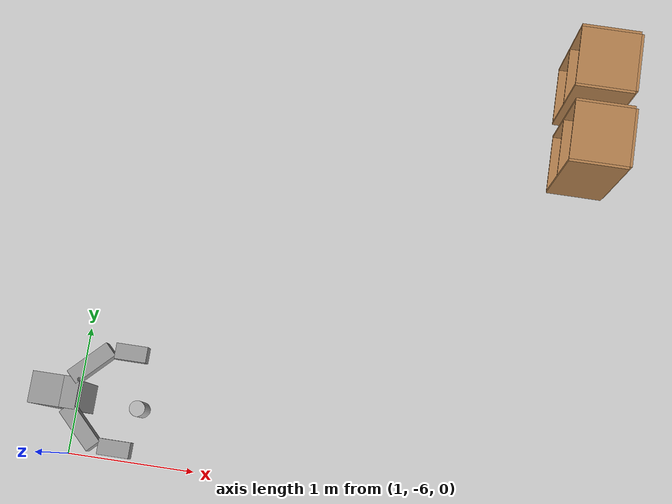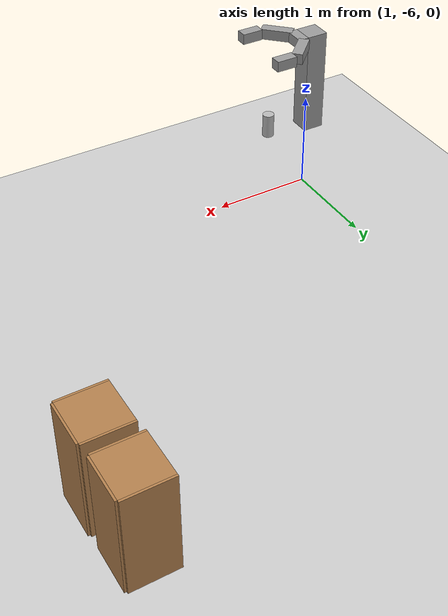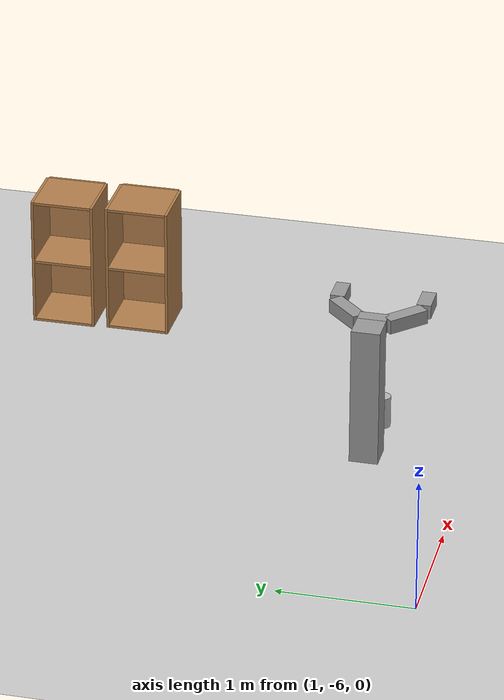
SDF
<sdf version="1.6">
 <world name="default">
  <model name="ground_plane">
   <static>1</static>
   <link name="link">
    <collision name="collision">
     <geometry><plane><normal>0 0 1</normal><size>100 100</size></plane></geometry>
     <surface>
      <contact><collide_bitmask>65535</collide_bitmask></contact>
      <friction><ode><mu>100</mu><mu2>50</mu2></ode></friction>
     </surface>
    </collision>
    <visual name="visual">
     <cast_shadows>0</cast_shadows>
     <geometry><plane><normal>0 0 1</normal><size>100 100</size></plane></geometry>
     <material>
      <script><uri>file://media/materials/scripts/gazebo.material</uri><name>Gazebo/Grey</name></script>
     </material>
    </visual>
   </link>
  </model>
  <model name="cabinet">
   <static>1</static>
   <link name="cabinet_bottom_plate">
    <inertial>
     <pose>0 0 -1 0 -0 0</pose>
     <inertia><ixx>2.05</ixx><ixy>0</ixy><ixz>0</ixz><iyy>2.05</iyy><iyz>0</iyz><izz>2.05</izz></inertia>
     <mass>25</mass>
    </inertial>
    <collision name="cabinet_bottom_plate_geom">
     <pose>0 0 0.01 0 -0 0</pose>
     <geometry><box><size>0.45 0.45 0.02</size></box></geometry>
    </collision>
    <visual name="cabinet_bottom_plate_geom_visual">
     <pose>0 0 0.01 0 -0 0</pose>
     <geometry><box><size>0.45 0.45 0.02</size></box></geometry>
     <material>
      <script><uri>file://media/materials/scripts/gazebo.material</uri><name>Gazebo/Wood</name></script>
     </material>
    </visual>
    <collision name="cabinet_bottom_plate_geom_cabinet_back_plate">
     <pose>0.235 0 0.51 0 -0 0</pose>
     <geometry><box><size>0.02 0.45 1.02</size></box></geometry>
    </collision>
    <visual name="cabinet_bottom_plate_geom_cabinet_back_plate_visual">
     <pose>0.235 0 0.51 0 -0 0</pose>
     <geometry><box><size>0.02 0.45 1.02</size></box></geometry>
     <material>
      <script><uri>file://media/materials/scripts/gazebo.material</uri><name>Gazebo/Wood</name></script>
     </material>
    </visual>
    <collision name="cabinet_bottom_plate_geom_cabinet_left_plate">
     <pose>0 0.235 0.51 0 -0 0</pose>
     <geometry><box><size>0.45 0.02 1.02</size></box></geometry>
    </collision>
    <visual name="cabinet_bottom_plate_geom_cabinet_left_plate_visual">
     <pose>0 0.235 0.51 0 -0 0</pose>
     <geometry><box><size>0.45 0.02 1.02</size></box></geometry>
     <material>
      <script><uri>file://media/materials/scripts/gazebo.material</uri><name>Gazebo/Wood</name></script>
     </material>
    </visual>
    <collision name="cabinet_bottom_plate_geom_cabinet_middle_plate">
     <pose>0 0 0.51 0 -0 0</pose>
     <geometry><box><size>0.45 0.45 0.02</size></box></geometry>
    </collision>
    <visual name="cabinet_bottom_plate_geom_cabinet_middle_plate_visual">
     <pose>0 0 0.51 0 -0 0</pose>
     <geometry><box><size>0.45 0.45 0.02</size></box></geometry>
     <material>
      <script><uri>file://media/materials/scripts/gazebo.material</uri><name>Gazebo/Wood</name></script>
     </material>
    </visual>
    <collision name="cabinet_bottom_plate_geom_cabinet_right_plate">
     <pose>0 -0.235 0.51 0 -0 0</pose>
     <geometry><box><size>0.45 0.02 1.02</size></box></geometry>
    </collision>
    <visual name="cabinet_bottom_plate_geom_cabinet_right_plate_visual">
     <pose>0 -0.235 0.51 0 -0 0</pose>
     <geometry><box><size>0.45 0.02 1.02</size></box></geometry>
     <material>
      <script><uri>file://media/materials/scripts/gazebo.material</uri><name>Gazebo/Wood</name></script>
     </material>
    </visual>
    <collision name="cabinet_bottom_plate_geom_cabinet_top_plate">
     <pose>0 0 1.01 0 -0 0</pose>
     <geometry><box><size>0.45 0.45 0.02</size></box></geometry>
    </collision>
    <visual name="cabinet_bottom_plate_geom_cabinet_top_plate_visual">
     <pose>0 0 1.01 0 -0 0</pose>
     <geometry><box><size>0.45 0.45 0.02</size></box></geometry>
     <material>
      <script><uri>file://media/materials/scripts/gazebo.material</uri><name>Gazebo/Wood</name></script>
     </material>
    </visual>
   </link>
   <pose>4.68279 -2.5185 0 0 -0 0</pose>
  </model>
  <model name="cabinet_0">
   <static>1</static>
   <link name="cabinet_bottom_plate">
    <inertial>
     <pose>0 0 -1 0 -0 0</pose>
     <inertia><ixx>2.05</ixx><ixy>0</ixy><ixz>0</ixz><iyy>2.05</iyy><iyz>0</iyz><izz>2.05</izz></inertia>
     <mass>25</mass>
    </inertial>
    <collision name="cabinet_bottom_plate_geom">
     <pose>0 0 0.01 0 -0 0</pose>
     <geometry><box><size>0.45 0.45 0.02</size></box></geometry>
    </collision>
    <visual name="cabinet_bottom_plate_geom_visual">
     <pose>0 0 0.01 0 -0 0</pose>
     <geometry><box><size>0.45 0.45 0.02</size></box></geometry>
     <material>
      <script><uri>file://media/materials/scripts/gazebo.material</uri><name>Gazebo/Wood</name></script>
     </material>
    </visual>
    <collision name="cabinet_bottom_plate_geom_cabinet_back_plate">
     <pose>0.235 0 0.51 0 -0 0</pose>
     <geometry><box><size>0.02 0.45 1.02</size></box></geometry>
    </collision>
    <visual name="cabinet_bottom_plate_geom_cabinet_back_plate_visual">
     <pose>0.235 0 0.51 0 -0 0</pose>
     <geometry><box><size>0.02 0.45 1.02</size></box></geometry>
     <material>
      <script><uri>file://media/materials/scripts/gazebo.material</uri><name>Gazebo/Wood</name></script>
     </material>
    </visual>
    <collision name="cabinet_bottom_plate_geom_cabinet_left_plate">
     <pose>0 0.235 0.51 0 -0 0</pose>
     <geometry><box><size>0.45 0.02 1.02</size></box></geometry>
    </collision>
    <visual name="cabinet_bottom_plate_geom_cabinet_left_plate_visual">
     <pose>0 0.235 0.51 0 -0 0</pose>
     <geometry><box><size>0.45 0.02 1.02</size></box></geometry>
     <material>
      <script><uri>file://media/materials/scripts/gazebo.material</uri><name>Gazebo/Wood</name></script>
     </material>
    </visual>
    <collision name="cabinet_bottom_plate_geom_cabinet_middle_plate">
     <pose>0 0 0.51 0 -0 0</pose>
     <geometry><box><size>0.45 0.45 0.02</size></box></geometry>
    </collision>
    <visual name="cabinet_bottom_plate_geom_cabinet_middle_plate_visual">
     <pose>0 0 0.51 0 -0 0</pose>
     <geometry><box><size>0.45 0.45 0.02</size></box></geometry>
     <material>
      <script><uri>file://media/materials/scripts/gazebo.material</uri><name>Gazebo/Wood</name></script>
     </material>
    </visual>
    <collision name="cabinet_bottom_plate_geom_cabinet_right_plate">
     <pose>0 -0.235 0.51 0 -0 0</pose>
     <geometry><box><size>0.45 0.02 1.02</size></box></geometry>
    </collision>
    <visual name="cabinet_bottom_plate_geom_cabinet_right_plate_visual">
     <pose>0 -0.235 0.51 0 -0 0</pose>
     <geometry><box><size>0.45 0.02 1.02</size></box></geometry>
     <material>
      <script><uri>file://media/materials/scripts/gazebo.material</uri><name>Gazebo/Wood</name></script>
     </material>
    </visual>
    <collision name="cabinet_bottom_plate_geom_cabinet_top_plate">
     <pose>0 0 1.01 0 -0 0</pose>
     <geometry><box><size>0.45 0.45 0.02</size></box></geometry>
    </collision>
    <visual name="cabinet_bottom_plate_geom_cabinet_top_plate_visual">
     <pose>0 0 1.01 0 -0 0</pose>
     <geometry><box><size>0.45 0.45 0.02</size></box></geometry>
     <material>
      <script><uri>file://media/materials/scripts/gazebo.material</uri><name>Gazebo/Wood</name></script>
     </material>
    </visual>
   </link>
   <pose>4.70024 -3.10262 0 0 -0 0</pose>
  </model>
  <model name="RobotGripper_clone">
   <link name="link_0">
    <pose>-0.270333 0 -0.375 0 -0 0</pose>
    <inertial>
     <mass>1</mass>
     <inertia>
      <ixx>0.166667</ixx>
      <ixy>0</ixy>
      <ixz>0</ixz>
      <iyy>0.166667</iyy>
      <iyz>0</iyz>
      <izz>0.166667</izz>
     </inertia>
     <pose>0 0 -0.5 0 -0 0</pose>
    </inertial>
    <visual name="visual">
     <geometry><box><size>0.2 0.2 1</size></box></geometry>
     <material>
      <lighting>1</lighting>
      <script><uri>file://media/materials/scripts/gazebo.material</uri><name>Gazebo/Grey</name></script>
      <shader type="pixel"><normal_map>__default__</normal_map></shader>
      <ambient>0.3 0.3 0.3 1</ambient>
      <diffuse>0.7 0.7 0.7 1</diffuse>
      <specular>0.01 0.01 0.01 1</specular>
      <emissive>0 0 0 1</emissive>
     </material>
    </visual>
    <collision name="collision">
     <geometry><box><size>0.2 0.2 1</size></box></geometry>
     <surface>
      <friction>
       <ode><mu>1</mu><mu2>1</mu2><fdir1>0 0 0</fdir1><slip1>0</slip1><slip2>0</slip2></ode>
       <torsional>
        <coefficient>1</coefficient>
        <patch_radius>0</patch_radius>
        <surface_radius>0</surface_radius>
        <use_patch_radius>1</use_patch_radius>
        <ode><slip>0</slip></ode>
       </torsional>
      </friction>
      <bounce><restitution_coefficient>0</restitution_coefficient><threshold>1e+06</threshold></bounce>
      <contact>
       <collide_without_contact>0</collide_without_contact>
       <collide_without_contact_bitmask>1</collide_without_contact_bitmask>
       <collide_bitmask>1</collide_bitmask>
       <ode>
        <soft_cfm>0</soft_cfm>
        <soft_erp>0.2</soft_erp>
        <kp>1e+13</kp>
        <kd>1</kd>
        <max_vel>0.01</max_vel>
        <min_depth>0</min_depth>
       </ode>
       <bullet>
        <split_impulse>1</split_impulse>
        <split_impulse_penetration_threshold>-0.01</split_impulse_penetration_threshold>
        <soft_cfm>0</soft_cfm>
        <soft_erp>0.2</soft_erp>
        <kp>1e+13</kp>
        <kd>1</kd>
       </bullet>
      </contact>
     </surface>
    </collision>
   </link>
   <link name="link_1">
    <pose>-0.120333 0 0.075 0 -0 0</pose>
    <inertial>
     <mass>1</mass>
     <inertia>
      <ixx>0.166667</ixx>
      <ixy>0</ixy>
      <ixz>0</ixz>
      <iyy>0.166667</iyy>
      <iyz>0</iyz>
      <izz>0.166667</izz>
     </inertia>
    </inertial>
    <visual name="visual">
     <geometry><box><size>0.1 0.2 0.1</size></box></geometry>
     <material>
      <lighting>1</lighting>
      <script><uri>file://media/materials/scripts/gazebo.material</uri><name>Gazebo/Grey</name></script>
      <shader type="pixel"><normal_map>__default__</normal_map></shader>
      <ambient>0.3 0.3 0.3 1</ambient>
      <diffuse>0.7 0.7 0.7 1</diffuse>
      <specular>0.01 0.01 0.01 1</specular>
      <emissive>0 0 0 1</emissive>
     </material>
    </visual>
    <collision name="collision">
     <geometry><box><size>0.1 0.2 0.1</size></box></geometry>
     <surface>
      <friction>
       <ode><mu>1</mu><mu2>1</mu2><fdir1>0 0 0</fdir1><slip1>0</slip1><slip2>0</slip2></ode>
       <torsional>
        <coefficient>1</coefficient>
        <patch_radius>0</patch_radius>
        <surface_radius>0</surface_radius>
        <use_patch_radius>1</use_patch_radius>
        <ode><slip>0</slip></ode>
       </torsional>
      </friction>
      <bounce><restitution_coefficient>0</restitution_coefficient><threshold>1e+06</threshold></bounce>
      <contact>
       <collide_without_contact>0</collide_without_contact>
       <collide_without_contact_bitmask>1</collide_without_contact_bitmask>
       <collide_bitmask>1</collide_bitmask>
       <ode>
        <soft_cfm>0</soft_cfm>
        <soft_erp>0.2</soft_erp>
        <kp>1e+13</kp>
        <kd>1</kd>
        <max_vel>0.01</max_vel>
        <min_depth>0</min_depth>
       </ode>
       <bullet>
        <split_impulse>1</split_impulse>
        <split_impulse_penetration_threshold>-0.01</split_impulse_penetration_threshold>
        <soft_cfm>0</soft_cfm>
        <soft_erp>0.2</soft_erp>
        <kp>1e+13</kp>
        <kd>1</kd>
       </bullet>
      </contact>
     </surface>
    </collision>
   </link>
   <link name="link_2">
    <pose>-0.020333 0.2 0.075 0 0 -0.78539</pose>
    <inertial>
     <mass>1</mass>
     <inertia>
      <ixx>0.166667</ixx>
      <ixy>0</ixy>
      <ixz>0</ixz>
      <iyy>0.166667</iyy>
      <iyz>0</iyz>
      <izz>0.166667</izz>
     </inertia>
    </inertial>
    <visual name="visual">
     <geometry><box><size>0.1 0.3 0.1</size></box></geometry>
     <material>
      <lighting>1</lighting>
      <script><uri>file://media/materials/scripts/gazebo.material</uri><name>Gazebo/Grey</name></script>
      <shader type="pixel"><normal_map>__default__</normal_map></shader>
      <ambient>0.3 0.3 0.3 1</ambient>
      <diffuse>0.7 0.7 0.7 1</diffuse>
      <specular>0.01 0.01 0.01 1</specular>
      <emissive>0 0 0 1</emissive>
     </material>
    </visual>
    <collision name="collision">
     <geometry><box><size>0.1 0.3 0.1</size></box></geometry>
     <surface>
      <friction>
       <ode><mu>1</mu><mu2>1</mu2><fdir1>0 0 0</fdir1><slip1>0</slip1><slip2>0</slip2></ode>
       <torsional>
        <coefficient>1</coefficient>
        <patch_radius>0</patch_radius>
        <surface_radius>0</surface_radius>
        <use_patch_radius>1</use_patch_radius>
        <ode><slip>0</slip></ode>
       </torsional>
      </friction>
      <bounce><restitution_coefficient>0</restitution_coefficient><threshold>1e+06</threshold></bounce>
      <contact>
       <collide_without_contact>0</collide_without_contact>
       <collide_without_contact_bitmask>1</collide_without_contact_bitmask>
       <collide_bitmask>1</collide_bitmask>
       <ode>
        <soft_cfm>0</soft_cfm>
        <soft_erp>0.2</soft_erp>
        <kp>1e+13</kp>
        <kd>1</kd>
        <max_vel>0.01</max_vel>
        <min_depth>0</min_depth>
       </ode>
       <bullet>
        <split_impulse>1</split_impulse>
        <split_impulse_penetration_threshold>-0.01</split_impulse_penetration_threshold>
        <soft_cfm>0</soft_cfm>
        <soft_erp>0.2</soft_erp>
        <kp>1e+13</kp>
        <kd>1</kd>
       </bullet>
      </contact>
     </surface>
    </collision>
   </link>
   <link name="link_2_clone">
    <pose>-0.020333 -0.2 0.075 0 -0 0.78539</pose>
    <inertial>
     <mass>1</mass>
     <inertia>
      <ixx>0.166667</ixx>
      <ixy>0</ixy>
      <ixz>0</ixz>
      <iyy>0.166667</iyy>
      <iyz>0</iyz>
      <izz>0.166667</izz>
     </inertia>
    </inertial>
    <visual name="visual">
     <geometry><box><size>0.1 0.3 0.1</size></box></geometry>
     <material>
      <lighting>1</lighting>
      <script><uri>file://media/materials/scripts/gazebo.material</uri><name>Gazebo/Grey</name></script>
      <shader type="pixel"><normal_map>__default__</normal_map></shader>
      <ambient>0.3 0.3 0.3 1</ambient>
      <diffuse>0.7 0.7 0.7 1</diffuse>
      <specular>0.01 0.01 0.01 1</specular>
      <emissive>0 0 0 1</emissive>
     </material>
    </visual>
    <collision name="collision">
     <geometry><box><size>0.1 0.3 0.1</size></box></geometry>
     <surface>
      <friction>
       <ode><mu>1</mu><mu2>1</mu2><fdir1>0 0 0</fdir1><slip1>0</slip1><slip2>0</slip2></ode>
       <torsional>
        <coefficient>1</coefficient>
        <patch_radius>0</patch_radius>
        <surface_radius>0</surface_radius>
        <use_patch_radius>1</use_patch_radius>
        <ode><slip>0</slip></ode>
       </torsional>
      </friction>
      <bounce><restitution_coefficient>0</restitution_coefficient><threshold>1e+06</threshold></bounce>
      <contact>
       <collide_without_contact>0</collide_without_contact>
       <collide_without_contact_bitmask>1</collide_without_contact_bitmask>
       <collide_bitmask>1</collide_bitmask>
       <ode>
        <soft_cfm>0</soft_cfm>
        <soft_erp>0.2</soft_erp>
        <kp>1e+13</kp>
        <kd>1</kd>
        <max_vel>0.01</max_vel>
        <min_depth>0</min_depth>
       </ode>
       <bullet>
        <split_impulse>1</split_impulse>
        <split_impulse_penetration_threshold>-0.01</split_impulse_penetration_threshold>
        <soft_cfm>0</soft_cfm>
        <soft_erp>0.2</soft_erp>
        <kp>1e+13</kp>
        <kd>1</kd>
       </bullet>
      </contact>
     </surface>
    </collision>
   </link>
   <link name="link_3">
    <pose>0.215667 0.3 0.075 0 -0 1.5707</pose>
    <inertial>
     <mass>1</mass>
     <inertia>
      <ixx>0.166667</ixx>
      <ixy>0</ixy>
      <ixz>0</ixz>
      <iyy>0.166667</iyy>
      <iyz>0</iyz>
      <izz>0.166667</izz>
     </inertia>
    </inertial>
    <visual name="visual">
     <geometry><box><size>0.1 0.2 0.1</size></box></geometry>
     <material>
      <lighting>1</lighting>
      <script><uri>file://media/materials/scripts/gazebo.material</uri><name>Gazebo/Grey</name></script>
      <shader type="pixel"><normal_map>__default__</normal_map></shader>
      <ambient>0.3 0.3 0.3 1</ambient>
      <diffuse>0.7 0.7 0.7 1</diffuse>
      <specular>0.01 0.01 0.01 1</specular>
      <emissive>0 0 0 1</emissive>
     </material>
    </visual>
    <collision name="collision">
     <geometry><box><size>0.1 0.2 0.1</size></box></geometry>
     <surface>
      <friction>
       <ode><mu>1</mu><mu2>1</mu2><fdir1>0 0 0</fdir1><slip1>0</slip1><slip2>0</slip2></ode>
       <torsional>
        <coefficient>1</coefficient>
        <patch_radius>0</patch_radius>
        <surface_radius>0</surface_radius>
        <use_patch_radius>1</use_patch_radius>
        <ode><slip>0</slip></ode>
       </torsional>
      </friction>
      <bounce><restitution_coefficient>0</restitution_coefficient><threshold>1e+06</threshold></bounce>
      <contact>
       <collide_without_contact>0</collide_without_contact>
       <collide_without_contact_bitmask>1</collide_without_contact_bitmask>
       <collide_bitmask>1</collide_bitmask>
       <ode>
        <soft_cfm>0</soft_cfm>
        <soft_erp>0.2</soft_erp>
        <kp>1e+13</kp>
        <kd>1</kd>
        <max_vel>0.01</max_vel>
        <min_depth>0</min_depth>
       </ode>
       <bullet>
        <split_impulse>1</split_impulse>
        <split_impulse_penetration_threshold>-0.01</split_impulse_penetration_threshold>
        <soft_cfm>0</soft_cfm>
        <soft_erp>0.2</soft_erp>
        <kp>1e+13</kp>
        <kd>1</kd>
       </bullet>
      </contact>
     </surface>
    </collision>
   </link>
   <link name="link_3_clone">
    <pose>0.215667 -0.3 0.075 0 -0 1.5707</pose>
    <inertial>
     <mass>1</mass>
     <inertia>
      <ixx>0.166667</ixx>
      <ixy>0</ixy>
      <ixz>0</ixz>
      <iyy>0.166667</iyy>
      <iyz>0</iyz>
      <izz>0.166667</izz>
     </inertia>
    </inertial>
    <visual name="visual">
     <geometry><box><size>0.1 0.2 0.1</size></box></geometry>
     <material>
      <lighting>1</lighting>
      <script><uri>file://media/materials/scripts/gazebo.material</uri><name>Gazebo/Grey</name></script>
      <shader type="pixel"><normal_map>__default__</normal_map></shader>
      <ambient>0.3 0.3 0.3 1</ambient>
      <diffuse>0.7 0.7 0.7 1</diffuse>
      <specular>0.01 0.01 0.01 1</specular>
      <emissive>0 0 0 1</emissive>
     </material>
    </visual>
    <collision name="collision">
     <geometry><box><size>0.1 0.2 0.1</size></box></geometry>
     <surface>
      <friction>
       <ode><mu>1</mu><mu2>1</mu2><fdir1>0 0 0</fdir1><slip1>0</slip1><slip2>0</slip2></ode>
       <torsional>
        <coefficient>1</coefficient>
        <patch_radius>0</patch_radius>
        <surface_radius>0</surface_radius>
        <use_patch_radius>1</use_patch_radius>
        <ode><slip>0</slip></ode>
       </torsional>
      </friction>
      <bounce><restitution_coefficient>0</restitution_coefficient><threshold>1e+06</threshold></bounce>
      <contact>
       <collide_without_contact>0</collide_without_contact>
       <collide_without_contact_bitmask>1</collide_without_contact_bitmask>
       <collide_bitmask>1</collide_bitmask>
       <ode>
        <soft_cfm>0</soft_cfm>
        <soft_erp>0.2</soft_erp>
        <kp>1e+13</kp>
        <kd>1</kd>
        <max_vel>0.01</max_vel>
        <min_depth>0</min_depth>
       </ode>
       <bullet>
        <split_impulse>1</split_impulse>
        <split_impulse_penetration_threshold>-0.01</split_impulse_penetration_threshold>
        <soft_cfm>0</soft_cfm>
        <soft_erp>0.2</soft_erp>
        <kp>1e+13</kp>
        <kd>1</kd>
       </bullet>
      </contact>
     </surface>
    </collision>
   </link>
   <joint name="link_0_JOINT_1" type="prismatic">
    <parent>link_0</parent>
    <child>link_1</child>
    <axis>
     <xyz>0 0 1</xyz>
     <use_parent_model_frame>0</use_parent_model_frame>
     <limit>
      <lower>-1.79769e+308</lower>
      <upper>1.79769e+308</upper>
      <effort>-1</effort>
      <velocity>-1</velocity>
     </limit>
     <dynamics>
      <spring_reference>0</spring_reference>
      <spring_stiffness>0</spring_stiffness>
      <damping>0</damping>
     </dynamics>
    </axis>
    <physics>
     <ode><limit><cfm>0</cfm><erp>0.2</erp></limit><suspension><cfm>0</cfm><erp>0.2</erp></suspension></ode>
    </physics>
   </joint>
   <joint name="link_1_JOINT_2" type="revolute">
    <parent>link_1</parent>
    <child>link_2</child>
    <axis>
     <xyz>0 0 1</xyz>
     <use_parent_model_frame>0</use_parent_model_frame>
     <limit>
      <lower>-1.79769e+308</lower>
      <upper>1.79769e+308</upper>
      <effort>-1</effort>
      <velocity>-1</velocity>
     </limit>
     <dynamics>
      <spring_reference>0</spring_reference>
      <spring_stiffness>0</spring_stiffness>
      <damping>0</damping>
     </dynamics>
    </axis>
    <physics>
     <ode><limit><cfm>0</cfm><erp>0.2</erp></limit><suspension><cfm>0</cfm><erp>0.2</erp></suspension></ode>
    </physics>
   </joint>
   <joint name="link_1_JOINT_3" type="revolute">
    <parent>link_1</parent>
    <child>link_2_clone</child>
    <axis>
     <xyz>0 0 1</xyz>
     <use_parent_model_frame>0</use_parent_model_frame>
     <limit>
      <lower>-1.79769e+308</lower>
      <upper>1.79769e+308</upper>
      <effort>-1</effort>
      <velocity>-1</velocity>
     </limit>
     <dynamics>
      <spring_reference>0</spring_reference>
      <spring_stiffness>0</spring_stiffness>
      <damping>0</damping>
     </dynamics>
    </axis>
    <physics>
     <ode><limit><cfm>0</cfm><erp>0.2</erp></limit><suspension><cfm>0</cfm><erp>0.2</erp></suspension></ode>
    </physics>
   </joint>
   <joint name="link_2_JOINT_4" type="revolute">
    <parent>link_2</parent>
    <child>link_3</child>
    <axis>
     <xyz>0 0 1</xyz>
     <use_parent_model_frame>0</use_parent_model_frame>
     <limit>
      <lower>-1.79769e+308</lower>
      <upper>1.79769e+308</upper>
      <effort>-1</effort>
      <velocity>-1</velocity>
     </limit>
     <dynamics>
      <spring_reference>0</spring_reference>
      <spring_stiffness>0</spring_stiffness>
      <damping>0</damping>
     </dynamics>
    </axis>
    <physics>
     <ode><limit><cfm>0</cfm><erp>0.2</erp></limit><suspension><cfm>0</cfm><erp>0.2</erp></suspension></ode>
    </physics>
   </joint>
   <joint name="link_2_clone_JOINT_5" type="revolute">
    <parent>link_2_clone</parent>
    <child>link_3_clone</child>
    <axis>
     <xyz>0 0 1</xyz>
     <use_parent_model_frame>0</use_parent_model_frame>
     <limit>
      <lower>-1.79769e+308</lower>
      <upper>1.79769e+308</upper>
      <effort>-1</effort>
      <velocity>-1</velocity>
     </limit>
     <dynamics>
      <spring_reference>0</spring_reference>
      <spring_stiffness>0</spring_stiffness>
      <damping>0</damping>
     </dynamics>
    </axis>
    <physics>
     <ode><limit><cfm>0</cfm><erp>0.2</erp></limit><suspension><cfm>0</cfm><erp>0.2</erp></suspension></ode>
    </physics>
   </joint>
   <static>0</static>
   <pose>1.52814 -5.58142 1.89 -3e-06 6e-06 -0.002467</pose>
  </model>
  <model name="beer">
   <link name="link">
    <pose>0 0 0.115 0 -0 0</pose>
    <inertial>
     <mass>0.39</mass>
     <inertia><ixx>0.00058</ixx><ixy>0</ixy><ixz>0</ixz><iyy>0.00058</iyy><iyz>0</iyz><izz>0.00019</izz></inertia>
    </inertial>
    <collision name="collision">
     <geometry><cylinder><radius>0.055</radius><length>0.23</length></cylinder></geometry>
    </collision>
    <visual name="visual">
     <geometry><cylinder><radius>0.055</radius><length>0.23</length></cylinder></geometry>
     <material>
      <script>
       <uri>model://beer/materials/scripts</uri>
       <uri>model://beer/materials/textures</uri>
       <name>Beer/Diffuse</name>
      </script>
     </material>
    </visual>
   </link>
   <pose>1.70178 -5.6015 1.01499 -1e-06 2.6e-05 0.000457</pose>
  </model>
 </world>
</sdf>
